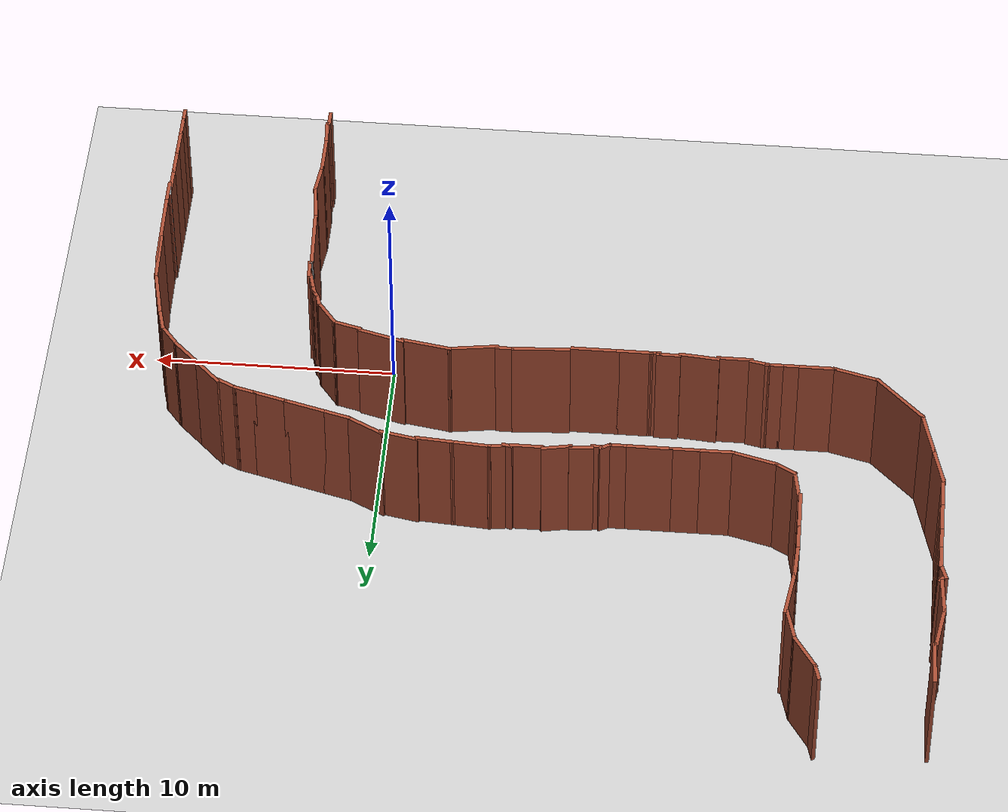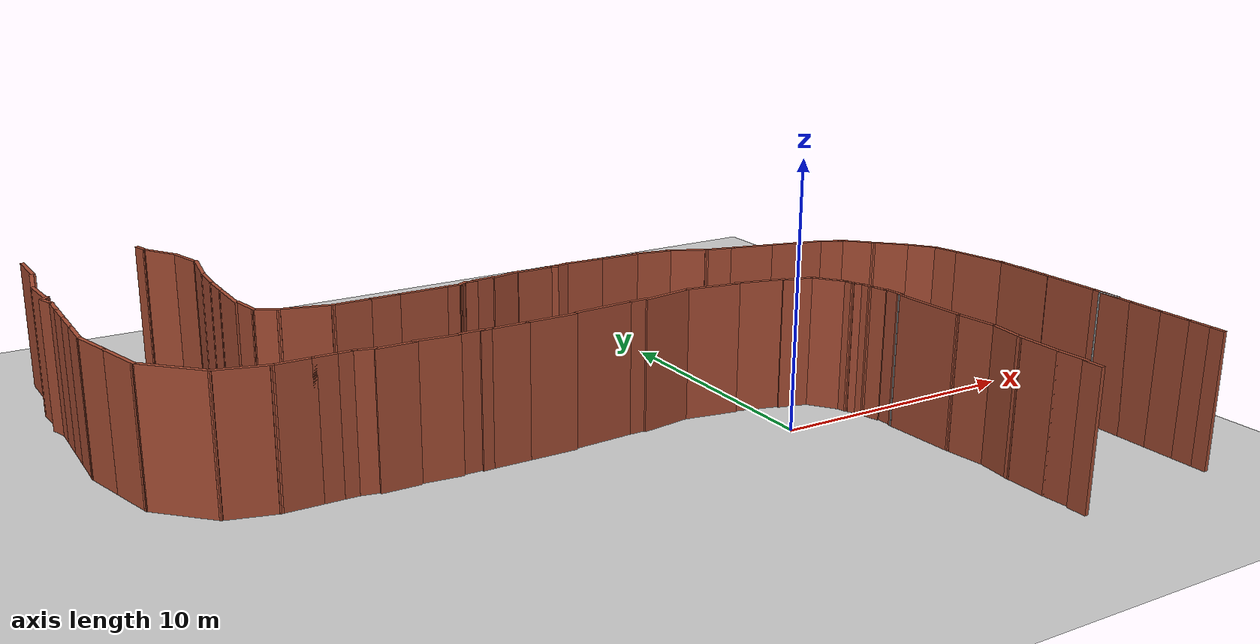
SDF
<sdf version="1.6">
 <world name="default">
  <model name="ground_plane">
   <static>1</static>
   <link name="link">
    <collision name="collision">
     <geometry><plane><normal>0 0 1</normal><size>100 100</size></plane></geometry>
     <surface><friction><ode><mu>100</mu><mu2>50</mu2></ode></friction></surface>
    </collision>
    <visual name="visual">
     <cast_shadows>0</cast_shadows>
     <geometry><plane><normal>0 0 1</normal><size>100 100</size></plane></geometry>
     <material>
      <script><uri>file://media/materials/scripts/gazebo.material</uri><name>Gazebo/Grey</name></script>
     </material>
    </visual>
   </link>
  </model>
  <model name="testing_world3">
   <pose>-6.53172 4.3084 0 0 -0 0</pose>
   <link name="Wall_10">
    <collision name="Wall_10_Collision">
     <geometry><box><size>2.30782 0.15 5</size></box></geometry>
     <pose>0 0 2.5 0 -0 0</pose>
    </collision>
    <visual name="Wall_10_Visual">
     <pose>0 0 2.5 0 -0 0</pose>
     <geometry><box><size>2.30782 0.15 5</size></box></geometry>
     <material>
      <script><uri>file://media/materials/scripts/gazebo.material</uri><name>Gazebo/Bricks</name></script>
      <ambient>1 1 1 1</ambient>
     </material>
     <meta><layer>0</layer></meta>
    </visual>
    <pose>16.3496 -5.59332 0 0 -0 1.60372</pose>
   </link>
   <link name="Wall_100">
    <collision name="Wall_100_Collision">
     <geometry><box><size>0.5 0.15 5</size></box></geometry>
     <pose>0 0 2.5 0 -0 0</pose>
    </collision>
    <visual name="Wall_100_Visual">
     <pose>0 0 2.5 0 -0 0</pose>
     <geometry><box><size>0.5 0.15 5</size></box></geometry>
     <material>
      <script><uri>file://media/materials/scripts/gazebo.material</uri><name>Gazebo/Bricks</name></script>
      <ambient>1 1 1 1</ambient>
     </material>
     <meta><layer>0</layer></meta>
    </visual>
    <pose>9.6284 -3.94444 0 0 -0 -1.0472</pose>
   </link>
   <link name="Wall_101">
    <collision name="Wall_101_Collision">
     <geometry><box><size>0.5 0.15 5</size></box></geometry>
     <pose>0 0 2.5 0 -0 0</pose>
    </collision>
    <visual name="Wall_101_Visual">
     <pose>0 0 2.5 0 -0 0</pose>
     <geometry><box><size>0.5 0.15 5</size></box></geometry>
     <material>
      <script><uri>file://media/materials/scripts/gazebo.material</uri><name>Gazebo/Bricks</name></script>
      <ambient>1 1 1 1</ambient>
     </material>
     <meta><layer>0</layer></meta>
    </visual>
    <pose>9.76119 -4.26503 0 0 -0 -1.309</pose>
   </link>
   <link name="Wall_102">
    <collision name="Wall_102_Collision">
     <geometry><box><size>0.761275 0.15 5</size></box></geometry>
     <pose>0 0 2.5 0 -0 0</pose>
    </collision>
    <visual name="Wall_102_Visual">
     <pose>0 0 2.5 0 -0 0</pose>
     <geometry><box><size>0.761275 0.15 5</size></box></geometry>
     <material>
      <script><uri>file://media/materials/scripts/gazebo.material</uri><name>Gazebo/Bricks</name></script>
      <ambient>1 1 1 1</ambient>
     </material>
     <meta><layer>0</layer></meta>
    </visual>
    <pose>9.88573 -4.72926 0 0 -0 -1.30853</pose>
   </link>
   <link name="Wall_103">
    <collision name="Wall_103_Collision">
     <geometry><box><size>0.863527 0.15 5</size></box></geometry>
     <pose>0 0 2.5 0 -0 0</pose>
    </collision>
    <visual name="Wall_103_Visual">
     <pose>0 0 2.5 0 -0 0</pose>
     <geometry><box><size>0.863527 0.15 5</size></box></geometry>
     <material>
      <script><uri>file://media/materials/scripts/gazebo.material</uri><name>Gazebo/Bricks</name></script>
      <ambient>1 1 1 1</ambient>
     </material>
     <meta><layer>0</layer></meta>
    </visual>
    <pose>10.0573 -5.38055 0 0 -0 -1.5102</pose>
   </link>
   <link name="Wall_104">
    <collision name="Wall_104_Collision">
     <geometry><box><size>0.15 0.15 5</size></box></geometry>
     <pose>0 0 2.5 0 -0 0</pose>
    </collision>
    <visual name="Wall_104_Visual">
     <pose>0 0 2.5 0 -0 0</pose>
     <geometry><box><size>0.15 0.15 5</size></box></geometry>
     <material>
      <script><uri>file://media/materials/scripts/gazebo.material</uri><name>Gazebo/Grey</name></script>
      <ambient>1 1 1 1</ambient>
     </material>
     <meta><layer>0</layer></meta>
    </visual>
    <pose>10.0082 -5.73666 0 0 -0 0</pose>
   </link>
   <link name="Wall_11">
    <collision name="Wall_11_Collision">
     <geometry><box><size>2.18167 0.15 5</size></box></geometry>
     <pose>0 0 2.5 0 -0 0</pose>
    </collision>
    <visual name="Wall_11_Visual">
     <pose>0 0 2.5 0 -0 0</pose>
     <geometry><box><size>2.18167 0.15 5</size></box></geometry>
     <material>
      <script><uri>file://media/materials/scripts/gazebo.material</uri><name>Gazebo/Bricks</name></script>
      <ambient>1 1 1 1</ambient>
     </material>
     <meta><layer>0</layer></meta>
    </visual>
    <pose>16.1021 -3.52182 0 0 -0 1.78103</pose>
   </link>
   <link name="Wall_12">
    <collision name="Wall_12_Collision">
     <geometry><box><size>1.11413 0.15 5</size></box></geometry>
     <pose>0 0 2.5 0 -0 0</pose>
    </collision>
    <visual name="Wall_12_Visual">
     <pose>0 0 2.5 0 -0 0</pose>
     <geometry><box><size>1.11413 0.15 5</size></box></geometry>
     <material>
      <script><uri>file://media/materials/scripts/gazebo.material</uri><name>Gazebo/Bricks</name></script>
      <ambient>1 1 1 1</ambient>
     </material>
     <meta><layer>0</layer></meta>
    </visual>
    <pose>15.7686 -2.06182 0 0 -0 1.82559</pose>
   </link>
   <link name="Wall_13">
    <collision name="Wall_13_Collision">
     <geometry><box><size>1.22947 0.15 5</size></box></geometry>
     <pose>0 0 2.5 0 -0 0</pose>
    </collision>
    <visual name="Wall_13_Visual">
     <pose>0 0 2.5 0 -0 0</pose>
     <geometry><box><size>1.22947 0.15 5</size></box></geometry>
     <material>
      <script><uri>file://media/materials/scripts/gazebo.material</uri><name>Gazebo/Bricks</name></script>
      <ambient>1 1 1 1</ambient>
     </material>
     <meta><layer>0</layer></meta>
    </visual>
    <pose>15.3141 -1.17032 0 0 -0 2.23541</pose>
   </link>
   <link name="Wall_14">
    <collision name="Wall_14_Collision">
     <geometry><box><size>1.50994 0.15 5</size></box></geometry>
     <pose>0 0 2.5 0 -0 0</pose>
    </collision>
    <visual name="Wall_14_Visual">
     <pose>0 0 2.5 0 -0 0</pose>
     <geometry><box><size>1.50994 0.15 5</size></box></geometry>
     <material>
      <script><uri>file://media/materials/scripts/gazebo.material</uri><name>Gazebo/Bricks</name></script>
      <ambient>1 1 1 1</ambient>
     </material>
     <meta><layer>0</layer></meta>
    </visual>
    <pose>14.4961 -0.268745 0 0 -0 2.36497</pose>
   </link>
   <link name="Wall_15">
    <collision name="Wall_15_Collision">
     <geometry><box><size>1.5 0.15 5</size></box></geometry>
     <pose>0 0 2.5 0 -0 0</pose>
    </collision>
    <visual name="Wall_15_Visual">
     <pose>0 0 2.5 0 -0 0</pose>
     <geometry><box><size>1.5 0.15 5</size></box></geometry>
     <material>
      <script><uri>file://media/materials/scripts/gazebo.material</uri><name>Gazebo/Bricks</name></script>
      <ambient>1 1 1 1</ambient>
     </material>
     <meta><layer>0</layer></meta>
    </visual>
    <pose>13.5338 0.685124 0 0 -0 2.35619</pose>
   </link>
   <link name="Wall_16">
    <collision name="Wall_16_Collision">
     <geometry><box><size>0.982832 0.15 5</size></box></geometry>
     <pose>0 0 2.5 0 -0 0</pose>
    </collision>
    <visual name="Wall_16_Visual">
     <pose>0 0 2.5 0 -0 0</pose>
     <geometry><box><size>0.982832 0.15 5</size></box></geometry>
     <material>
      <script><uri>file://media/materials/scripts/gazebo.material</uri><name>Gazebo/Bricks</name></script>
      <ambient>1 1 1 1</ambient>
     </material>
     <meta><layer>0</layer></meta>
    </visual>
    <pose>12.6814 1.27242 0 0 -0 2.69258</pose>
   </link>
   <link name="Wall_17">
    <collision name="Wall_17_Collision">
     <geometry><box><size>1 0.15 5</size></box></geometry>
     <pose>0 0 2.5 0 -0 0</pose>
    </collision>
    <visual name="Wall_17_Visual">
     <pose>0 0 2.5 0 -0 0</pose>
     <geometry><box><size>1 0.15 5</size></box></geometry>
     <material>
      <script><uri>file://media/materials/scripts/gazebo.material</uri><name>Gazebo/Bricks</name></script>
      <ambient>1 1 1 1</ambient>
     </material>
     <meta><layer>0</layer></meta>
    </visual>
    <pose>11.8957 1.56317 0 0 -0 2.87979</pose>
   </link>
   <link name="Wall_18">
    <collision name="Wall_18_Collision">
     <geometry><box><size>1.5 0.15 5</size></box></geometry>
     <pose>0 0 2.5 0 -0 0</pose>
    </collision>
    <visual name="Wall_18_Visual">
     <pose>0 0 2.5 0 -0 0</pose>
     <geometry><box><size>1.5 0.15 5</size></box></geometry>
     <material>
      <script><uri>file://media/materials/scripts/gazebo.material</uri><name>Gazebo/Bricks</name></script>
      <ambient>1 1 1 1</ambient>
     </material>
     <meta><layer>0</layer></meta>
    </visual>
    <pose>10.8332 1.84787 0 0 -0 2.87979</pose>
   </link>
   <link name="Wall_19">
    <collision name="Wall_19_Collision">
     <geometry><box><size>1.75 0.15 5</size></box></geometry>
     <pose>0 0 2.5 0 -0 0</pose>
    </collision>
    <visual name="Wall_19_Visual">
     <pose>0 0 2.5 0 -0 0</pose>
     <geometry><box><size>1.75 0.15 5</size></box></geometry>
     <material>
      <script><uri>file://media/materials/scripts/gazebo.material</uri><name>Gazebo/Bricks</name></script>
      <ambient>1 1 1 1</ambient>
     </material>
     <meta><layer>0</layer></meta>
    </visual>
    <pose>9.40845 2.22963 0 0 -0 2.87979</pose>
   </link>
   <link name="Wall_20">
    <collision name="Wall_20_Collision">
     <geometry><box><size>1.25 0.15 5</size></box></geometry>
     <pose>0 0 2.5 0 -0 0</pose>
    </collision>
    <visual name="Wall_20_Visual">
     <pose>0 0 2.5 0 -0 0</pose>
     <geometry><box><size>1.25 0.15 5</size></box></geometry>
     <material>
      <script><uri>file://media/materials/scripts/gazebo.material</uri><name>Gazebo/Bricks</name></script>
      <ambient>1 1 1 1</ambient>
     </material>
     <meta><layer>0</layer></meta>
    </visual>
    <pose>8.10445 2.57904 0 0 -0 2.87979</pose>
   </link>
   <link name="Wall_21">
    <collision name="Wall_21_Collision">
     <geometry><box><size>1.69416 0.15 5</size></box></geometry>
     <pose>0 0 2.5 0 -0 0</pose>
    </collision>
    <visual name="Wall_21_Visual">
     <pose>0 0 2.5 0 -0 0</pose>
     <geometry><box><size>1.69416 0.15 5</size></box></geometry>
     <material>
      <script><uri>file://media/materials/scripts/gazebo.material</uri><name>Gazebo/Bricks</name></script>
      <ambient>1 1 1 1</ambient>
     </material>
     <meta><layer>0</layer></meta>
    </visual>
    <pose>6.88581 3.07298 0 0 -0 2.66879</pose>
   </link>
   <link name="Wall_22">
    <collision name="Wall_22_Collision">
     <geometry><box><size>1.59867 0.15 5</size></box></geometry>
     <pose>0 0 2.5 0 -0 0</pose>
    </collision>
    <visual name="Wall_22_Visual">
     <pose>0 0 2.5 0 -0 0</pose>
     <geometry><box><size>1.59867 0.15 5</size></box></geometry>
     <material>
      <script><uri>file://media/materials/scripts/gazebo.material</uri><name>Gazebo/Bricks</name></script>
      <ambient>1 1 1 1</ambient>
     </material>
     <meta><layer>0</layer></meta>
    </visual>
    <pose>5.48805 3.49534 0 0 -0 2.94496</pose>
   </link>
   <link name="Wall_23">
    <collision name="Wall_23_Collision">
     <geometry><box><size>1.61128 0.15 5</size></box></geometry>
     <pose>0 0 2.5 0 -0 0</pose>
    </collision>
    <visual name="Wall_23_Visual">
     <pose>0 0 2.5 0 -0 0</pose>
     <geometry><box><size>1.61128 0.15 5</size></box></geometry>
     <material>
      <script><uri>file://media/materials/scripts/gazebo.material</uri><name>Gazebo/Bricks</name></script>
      <ambient>1 1 1 1</ambient>
     </material>
     <meta><layer>0</layer></meta>
    </visual>
    <pose>4.04895 3.61896 0 0 -0 3.06917</pose>
   </link>
   <link name="Wall_24">
    <collision name="Wall_24_Collision">
     <geometry><box><size>1.64283 0.15 5</size></box></geometry>
     <pose>0 0 2.5 0 -0 0</pose>
    </collision>
    <visual name="Wall_24_Visual">
     <pose>0 0 2.5 0 -0 0</pose>
     <geometry><box><size>1.64283 0.15 5</size></box></geometry>
     <material>
      <script><uri>file://media/materials/scripts/gazebo.material</uri><name>Gazebo/Bricks</name></script>
      <ambient>1 1 1 1</ambient>
     </material>
     <meta><layer>0</layer></meta>
    </visual>
    <pose>2.5757 3.72496 0 0 -0 3.07036</pose>
   </link>
   <link name="Wall_25">
    <collision name="Wall_25_Collision">
     <geometry><box><size>0.720151 0.15 5</size></box></geometry>
     <pose>0 0 2.5 0 -0 0</pose>
    </collision>
    <visual name="Wall_25_Visual">
     <pose>0 0 2.5 0 -0 0</pose>
     <geometry><box><size>0.720151 0.15 5</size></box></geometry>
     <material>
      <script><uri>file://media/materials/scripts/gazebo.material</uri><name>Gazebo/Bricks</name></script>
      <ambient>1 1 1 1</ambient>
     </material>
     <meta><layer>0</layer></meta>
    </visual>
    <pose>1.54829 3.74285 0 0 -0 -3.01766</pose>
   </link>
   <link name="Wall_26">
    <collision name="Wall_26_Collision">
     <geometry><box><size>0.458341 0.15 5</size></box></geometry>
     <pose>0 0 2.5 0 -0 0</pose>
    </collision>
    <visual name="Wall_26_Visual">
     <pose>0 0 2.5 0 -0 0</pose>
     <geometry><box><size>0.458341 0.15 5</size></box></geometry>
     <material>
      <script><uri>file://media/materials/scripts/gazebo.material</uri><name>Gazebo/Bricks</name></script>
      <ambient>1 1 1 1</ambient>
     </material>
     <meta><layer>0</layer></meta>
    </visual>
    <pose>1.11714 3.67912 0 0 -0 2.86388</pose>
   </link>
   <link name="Wall_27">
    <collision name="Wall_27_Collision">
     <geometry><box><size>1.42924 0.15 5</size></box></geometry>
     <pose>0 0 2.5 0 -0 0</pose>
    </collision>
    <visual name="Wall_27_Visual">
     <pose>0 0 2.5 0 -0 0</pose>
     <geometry><box><size>1.42924 0.15 5</size></box></geometry>
     <material>
      <script><uri>file://media/materials/scripts/gazebo.material</uri><name>Gazebo/Bricks</name></script>
      <ambient>1 1 1 1</ambient>
     </material>
     <meta><layer>0</layer></meta>
    </visual>
    <pose>0.329252 3.65063 0 0 -0 3.14159</pose>
   </link>
   <link name="Wall_28">
    <collision name="Wall_28_Collision">
     <geometry><box><size>1.27029 0.15 5</size></box></geometry>
     <pose>0 0 2.5 0 -0 0</pose>
    </collision>
    <visual name="Wall_28_Visual">
     <pose>0 0 2.5 0 -0 0</pose>
     <geometry><box><size>1.27029 0.15 5</size></box></geometry>
     <material>
      <script><uri>file://media/materials/scripts/gazebo.material</uri><name>Gazebo/Bricks</name></script>
      <ambient>1 1 1 1</ambient>
     </material>
     <meta><layer>0</layer></meta>
    </visual>
    <pose>-0.860369 3.61525 0 0 -0 -2.95096</pose>
   </link>
   <link name="Wall_29">
    <collision name="Wall_29_Collision">
     <geometry><box><size>1.00294 0.15 5</size></box></geometry>
     <pose>0 0 2.5 0 -0 0</pose>
    </collision>
    <visual name="Wall_29_Visual">
     <pose>0 0 2.5 0 -0 0</pose>
     <geometry><box><size>1.00294 0.15 5</size></box></geometry>
     <material>
      <script><uri>file://media/materials/scripts/gazebo.material</uri><name>Gazebo/Bricks</name></script>
      <ambient>1 1 1 1</ambient>
     </material>
     <meta><layer>0</layer></meta>
    </visual>
    <pose>-1.83537 3.54449 0 0 -0 -3.05854</pose>
   </link>
   <link name="Wall_3">
    <collision name="Wall_3_Collision">
     <geometry><box><size>1.5 0.15 5</size></box></geometry>
     <pose>0 0 2.5 0 -0 0</pose>
    </collision>
    <visual name="Wall_3_Visual">
     <pose>0 0 2.5 0 -0 0</pose>
     <geometry><box><size>1.5 0.15 5</size></box></geometry>
     <material>
      <script><uri>file://media/materials/scripts/gazebo.material</uri><name>Gazebo/Bricks</name></script>
      <ambient>1 1 1 1</ambient>
     </material>
     <meta><layer>0</layer></meta>
    </visual>
    <pose>16.3851 -9.88032 0 0 -0 1.5708</pose>
   </link>
   <link name="Wall_30">
    <collision name="Wall_30_Collision">
     <geometry><box><size>0.5 0.15 5</size></box></geometry>
     <pose>0 0 2.5 0 -0 0</pose>
    </collision>
    <visual name="Wall_30_Visual">
     <pose>0 0 2.5 0 -0 0</pose>
     <geometry><box><size>0.5 0.15 5</size></box></geometry>
     <material>
      <script><uri>file://media/materials/scripts/gazebo.material</uri><name>Gazebo/Bricks</name></script>
      <ambient>1 1 1 1</ambient>
     </material>
     <meta><layer>0</layer></meta>
    </visual>
    <pose>-2.43537 3.43836 0 0 -0 3.14159</pose>
   </link>
   <link name="Wall_31">
    <collision name="Wall_31_Collision">
     <geometry><box><size>0.539009 0.15 5</size></box></geometry>
     <pose>0 0 2.5 0 -0 0</pose>
    </collision>
    <visual name="Wall_31_Visual">
     <pose>0 0 2.5 0 -0 0</pose>
     <geometry><box><size>0.539009 0.15 5</size></box></geometry>
     <material>
      <script><uri>file://media/materials/scripts/gazebo.material</uri><name>Gazebo/Bricks</name></script>
      <ambient>1 1 1 1</ambient>
     </material>
     <meta><layer>0</layer></meta>
    </visual>
    <pose>-2.77941 3.41289 0 0 -0 -2.62411</pose>
   </link>
   <link name="Wall_32">
    <collision name="Wall_32_Collision">
     <geometry><box><size>0.75 0.15 5</size></box></geometry>
     <pose>0 0 2.5 0 -0 0</pose>
    </collision>
    <visual name="Wall_32_Visual">
     <pose>0 0 2.5 0 -0 0</pose>
     <geometry><box><size>0.75 0.15 5</size></box></geometry>
     <material>
      <script><uri>file://media/materials/scripts/gazebo.material</uri><name>Gazebo/Bricks</name></script>
      <ambient>1 1 1 1</ambient>
     </material>
     <meta><layer>0</layer></meta>
    </visual>
    <pose>-3.24844 3.31667 0 0 -0 3.14159</pose>
   </link>
   <link name="Wall_34">
    <collision name="Wall_34_Collision">
     <geometry><box><size>2 0.15 5</size></box></geometry>
     <pose>0 0 2.5 0 -0 0</pose>
    </collision>
    <visual name="Wall_34_Visual">
     <pose>0 0 2.5 0 -0 0</pose>
     <geometry><box><size>2 0.15 5</size></box></geometry>
     <material>
      <script><uri>file://media/materials/scripts/gazebo.material</uri><name>Gazebo/Bricks</name></script>
      <ambient>1 1 1 1</ambient>
     </material>
     <meta><layer>0</layer></meta>
    </visual>
    <pose>-4.47344 3.31667 0 0 -0 3.14159</pose>
   </link>
   <link name="Wall_35">
    <collision name="Wall_35_Collision">
     <geometry><box><size>1.25 0.15 5</size></box></geometry>
     <pose>0 0 2.5 0 -0 0</pose>
    </collision>
    <visual name="Wall_35_Visual">
     <pose>0 0 2.5 0 -0 0</pose>
     <geometry><box><size>1.25 0.15 5</size></box></geometry>
     <material>
      <script><uri>file://media/materials/scripts/gazebo.material</uri><name>Gazebo/Bricks</name></script>
      <ambient>1 1 1 1</ambient>
     </material>
     <meta><layer>0</layer></meta>
    </visual>
    <pose>-5.94844 3.31667 0 0 -0 3.14159</pose>
   </link>
   <link name="Wall_36">
    <collision name="Wall_36_Collision">
     <geometry><box><size>1.5 0.15 5</size></box></geometry>
     <pose>0 0 2.5 0 -0 0</pose>
    </collision>
    <visual name="Wall_36_Visual">
     <pose>0 0 2.5 0 -0 0</pose>
     <geometry><box><size>1.5 0.15 5</size></box></geometry>
     <material>
      <script><uri>file://media/materials/scripts/gazebo.material</uri><name>Gazebo/Bricks</name></script>
      <ambient>1 1 1 1</ambient>
     </material>
     <meta><layer>0</layer></meta>
    </visual>
    <pose>-7.17344 3.31667 0 0 -0 3.14159</pose>
   </link>
   <link name="Wall_37">
    <collision name="Wall_37_Collision">
     <geometry><box><size>2 0.15 5</size></box></geometry>
     <pose>0 0 2.5 0 -0 0</pose>
    </collision>
    <visual name="Wall_37_Visual">
     <pose>0 0 2.5 0 -0 0</pose>
     <geometry><box><size>2 0.15 5</size></box></geometry>
     <material>
      <script><uri>file://media/materials/scripts/gazebo.material</uri><name>Gazebo/Bricks</name></script>
      <ambient>1 1 1 1</ambient>
     </material>
     <meta><layer>0</layer></meta>
    </visual>
    <pose>-8.74193 3.55608 0 0 -0 2.87979</pose>
   </link>
   <link name="Wall_38">
    <collision name="Wall_38_Collision">
     <geometry><box><size>1 0.15 5</size></box></geometry>
     <pose>0 0 2.5 0 -0 0</pose>
    </collision>
    <visual name="Wall_38_Visual">
     <pose>0 0 2.5 0 -0 0</pose>
     <geometry><box><size>1 0.15 5</size></box></geometry>
     <material>
      <script><uri>file://media/materials/scripts/gazebo.material</uri><name>Gazebo/Bricks</name></script>
      <ambient>1 1 1 1</ambient>
     </material>
     <meta><layer>0</layer></meta>
    </visual>
    <pose>-10.0035 4.00799 0 0 -0 2.61799</pose>
   </link>
   <link name="Wall_39">
    <collision name="Wall_39_Collision">
     <geometry><box><size>1.2616 0.15 5</size></box></geometry>
     <pose>0 0 2.5 0 -0 0</pose>
    </collision>
    <visual name="Wall_39_Visual">
     <pose>0 0 2.5 0 -0 0</pose>
     <geometry><box><size>1.2616 0.15 5</size></box></geometry>
     <material>
      <script><uri>file://media/materials/scripts/gazebo.material</uri><name>Gazebo/Bricks</name></script>
      <ambient>1 1 1 1</ambient>
     </material>
     <meta><layer>0</layer></meta>
    </visual>
    <pose>-10.4696 4.76756 0 0 -0 1.74824</pose>
   </link>
   <link name="Wall_4">
    <collision name="Wall_4_Collision">
     <geometry><box><size>0.784982 0.15 5</size></box></geometry>
     <pose>0 0 2.5 0 -0 0</pose>
    </collision>
    <visual name="Wall_4_Visual">
     <pose>0 0 2.5 0 -0 0</pose>
     <geometry><box><size>0.784982 0.15 5</size></box></geometry>
     <material>
      <script><uri>file://media/materials/scripts/gazebo.material</uri><name>Gazebo/Grey</name></script>
      <ambient>1 1 1 1</ambient>
     </material>
     <meta><layer>0</layer></meta>
    </visual>
    <pose>16.4206 -9.52082 0 0 -0 -1.45875</pose>
   </link>
   <link name="Wall_40">
    <collision name="Wall_40_Collision">
     <geometry><box><size>1.84697 0.15 5</size></box></geometry>
     <pose>0 0 2.5 0 -0 0</pose>
    </collision>
    <visual name="Wall_40_Visual">
     <pose>0 0 2.5 0 -0 0</pose>
     <geometry><box><size>1.84697 0.15 5</size></box></geometry>
     <material>
      <script><uri>file://media/materials/scripts/gazebo.material</uri><name>Gazebo/Bricks</name></script>
      <ambient>1 1 1 1</ambient>
     </material>
     <meta><layer>0</layer></meta>
    </visual>
    <pose>-10.6452 6.16309 0 0 -0 1.57866</pose>
   </link>
   <link name="Wall_41">
    <collision name="Wall_41_Collision">
     <geometry><box><size>1.25 0.15 5</size></box></geometry>
     <pose>0 0 2.5 0 -0 0</pose>
    </collision>
    <visual name="Wall_41_Visual">
     <pose>0 0 2.5 0 -0 0</pose>
     <geometry><box><size>1.25 0.15 5</size></box></geometry>
     <material>
      <script><uri>file://media/materials/scripts/gazebo.material</uri><name>Gazebo/Bricks</name></script>
      <ambient>1 1 1 1</ambient>
     </material>
     <meta><layer>0</layer></meta>
    </visual>
    <pose>-10.6518 7.56155 0 0 -0 1.5708</pose>
   </link>
   <link name="Wall_42">
    <collision name="Wall_42_Collision">
     <geometry><box><size>1.45529 0.15 5</size></box></geometry>
     <pose>0 0 2.5 0 -0 0</pose>
    </collision>
    <visual name="Wall_42_Visual">
     <pose>0 0 2.5 0 -0 0</pose>
     <geometry><box><size>1.45529 0.15 5</size></box></geometry>
     <material>
      <script><uri>file://media/materials/scripts/gazebo.material</uri><name>Gazebo/Bricks</name></script>
      <ambient>1 1 1 1</ambient>
     </material>
     <meta><layer>0</layer></meta>
    </visual>
    <pose>-10.6167 8.76324 0 0 -0 1.51689</pose>
   </link>
   <link name="Wall_43">
    <collision name="Wall_43_Collision">
     <geometry><box><size>2.0915 0.15 5</size></box></geometry>
     <pose>0 0 2.5 0 -0 0</pose>
    </collision>
    <visual name="Wall_43_Visual">
     <pose>0 0 2.5 0 -0 0</pose>
     <geometry><box><size>2.0915 0.15 5</size></box></geometry>
     <material>
      <script><uri>file://media/materials/scripts/gazebo.material</uri><name>Gazebo/Bricks</name></script>
      <ambient>1 1 1 1</ambient>
     </material>
     <meta><layer>0</layer></meta>
    </visual>
    <pose>-10.44 10.3753 0 0 -0 1.4245</pose>
   </link>
   <link name="Wall_44">
    <collision name="Wall_44_Collision">
     <geometry><box><size>1.5 0.15 5</size></box></geometry>
     <pose>0 0 2.5 0 -0 0</pose>
    </collision>
    <visual name="Wall_44_Visual">
     <pose>0 0 2.5 0 -0 0</pose>
     <geometry><box><size>1.5 0.15 5</size></box></geometry>
     <material>
      <script><uri>file://media/materials/scripts/gazebo.material</uri><name>Gazebo/Bricks</name></script>
      <ambient>1 1 1 1</ambient>
     </material>
     <meta><layer>0</layer></meta>
    </visual>
    <pose>-10.544 11.9877 0 0 -0 1.8326</pose>
   </link>
   <link name="Wall_45">
    <collision name="Wall_45_Collision">
     <geometry><box><size>1.69608 0.15 5</size></box></geometry>
     <pose>0 0 2.5 0 -0 0</pose>
    </collision>
    <visual name="Wall_45_Visual">
     <pose>0 0 2.5 0 -0 0</pose>
     <geometry><box><size>1.69608 0.15 5</size></box></geometry>
     <material>
      <script><uri>file://media/materials/scripts/gazebo.material</uri><name>Gazebo/Bricks</name></script>
      <ambient>1 1 1 1</ambient>
     </material>
     <meta><layer>0</layer></meta>
    </visual>
    <pose>-11.1371 13.2897 0 0 -0 2.14284</pose>
   </link>
   <link name="Wall_46">
    <collision name="Wall_46_Collision">
     <geometry><box><size>0.75 0.15 5</size></box></geometry>
     <pose>0 0 2.5 0 -0 0</pose>
    </collision>
    <visual name="Wall_46_Visual">
     <pose>0 0 2.5 0 -0 0</pose>
     <geometry><box><size>0.75 0.15 5</size></box></geometry>
     <material>
      <script><uri>file://media/materials/scripts/gazebo.material</uri><name>Gazebo/Bricks</name></script>
      <ambient>1 1 1 1</ambient>
     </material>
     <meta><layer>0</layer></meta>
    </visual>
    <pose>-11.6333 14.2294 0 0 -0 1.8326</pose>
   </link>
   <link name="Wall_48">
    <collision name="Wall_48_Collision">
     <geometry><box><size>1.44172 0.15 5</size></box></geometry>
     <pose>0 0 2.5 0 -0 0</pose>
    </collision>
    <visual name="Wall_48_Visual">
     <pose>0 0 2.5 0 -0 0</pose>
     <geometry><box><size>1.44172 0.15 5</size></box></geometry>
     <material>
      <script><uri>file://media/materials/scripts/gazebo.material</uri><name>Gazebo/Bricks</name></script>
      <ambient>1 1 1 1</ambient>
     </material>
     <meta><layer>0</layer></meta>
    </visual>
    <pose>10.2582 -10.6601 0 0 -0 1.46102</pose>
   </link>
   <link name="Wall_49">
    <collision name="Wall_49_Collision">
     <geometry><box><size>1.59268 0.15 5</size></box></geometry>
     <pose>0 0 2.5 0 -0 0</pose>
    </collision>
    <visual name="Wall_49_Visual">
     <pose>0 0 2.5 0 -0 0</pose>
     <geometry><box><size>1.59268 0.15 5</size></box></geometry>
     <material>
      <script><uri>file://media/materials/scripts/gazebo.material</uri><name>Gazebo/Bricks</name></script>
      <ambient>1 1 1 1</ambient>
     </material>
     <meta><layer>0</layer></meta>
    </visual>
    <pose>10.2393 -9.23165 0 0 -0 1.6954</pose>
   </link>
   <link name="Wall_5">
    <collision name="Wall_5_Collision">
     <geometry><box><size>1.17936 0.15 5</size></box></geometry>
     <pose>0 0 2.5 0 -0 0</pose>
    </collision>
    <visual name="Wall_5_Visual">
     <pose>0 0 2.5 0 -0 0</pose>
     <geometry><box><size>1.17936 0.15 5</size></box></geometry>
     <material>
      <script><uri>file://media/materials/scripts/gazebo.material</uri><name>Gazebo/Bricks</name></script>
      <ambient>1 1 1 1</ambient>
     </material>
     <meta><layer>0</layer></meta>
    </visual>
    <pose>16.4561 -9.32182 0 0 -0 1.5708</pose>
   </link>
   <link name="Wall_50">
    <collision name="Wall_50_Collision">
     <geometry><box><size>2.93284 0.15 5</size></box></geometry>
     <pose>0 0 2.5 0 -0 0</pose>
    </collision>
    <visual name="Wall_50_Visual">
     <pose>0 0 2.5 0 -0 0</pose>
     <geometry><box><size>2.93284 0.15 5</size></box></geometry>
     <material>
      <script><uri>file://media/materials/scripts/gazebo.material</uri><name>Gazebo/Bricks</name></script>
      <ambient>1 1 1 1</ambient>
     </material>
     <meta><layer>0</layer></meta>
    </visual>
    <pose>10.0789 -7.12628 0 0 -0 1.62167</pose>
   </link>
   <link name="Wall_54">
    <collision name="Wall_54_Collision">
     <geometry><box><size>1.39835 0.15 5</size></box></geometry>
     <pose>0 0 2.5 0 -0 0</pose>
    </collision>
    <visual name="Wall_54_Visual">
     <pose>0 0 2.5 0 -0 0</pose>
     <geometry><box><size>1.39835 0.15 5</size></box></geometry>
     <material>
      <script><uri>file://media/materials/scripts/gazebo.material</uri><name>Gazebo/Bricks</name></script>
      <ambient>1 1 1 1</ambient>
     </material>
     <meta><layer>0</layer></meta>
    </visual>
    <pose>9.07353 -2.95719 0 0 -0 2.21887</pose>
   </link>
   <link name="Wall_55">
    <collision name="Wall_55_Collision">
     <geometry><box><size>1.25 0.15 5</size></box></geometry>
     <pose>0 0 2.5 0 -0 0</pose>
    </collision>
    <visual name="Wall_55_Visual">
     <pose>0 0 2.5 0 -0 0</pose>
     <geometry><box><size>1.25 0.15 5</size></box></geometry>
     <material>
      <script><uri>file://media/materials/scripts/gazebo.material</uri><name>Gazebo/Bricks</name></script>
      <ambient>1 1 1 1</ambient>
     </material>
     <meta><layer>0</layer></meta>
    </visual>
    <pose>8.16548 -2.31722 0 0 -0 2.87979</pose>
   </link>
   <link name="Wall_56">
    <collision name="Wall_56_Collision">
     <geometry><box><size>2 0.15 5</size></box></geometry>
     <pose>0 0 2.5 0 -0 0</pose>
    </collision>
    <visual name="Wall_56_Visual">
     <pose>0 0 2.5 0 -0 0</pose>
     <geometry><box><size>2 0.15 5</size></box></geometry>
     <material>
      <script><uri>file://media/materials/scripts/gazebo.material</uri><name>Gazebo/Bricks</name></script>
      <ambient>1 1 1 1</ambient>
     </material>
     <meta><layer>0</layer></meta>
    </visual>
    <pose>6.74074 -1.8647 0 0 -0 2.87979</pose>
   </link>
   <link name="Wall_57">
    <collision name="Wall_57_Collision">
     <geometry><box><size>2.13486 0.15 5</size></box></geometry>
     <pose>0 0 2.5 0 -0 0</pose>
    </collision>
    <visual name="Wall_57_Visual">
     <pose>0 0 2.5 0 -0 0</pose>
     <geometry><box><size>2.13486 0.15 5</size></box></geometry>
     <material>
      <script><uri>file://media/materials/scripts/gazebo.material</uri><name>Gazebo/Bricks</name></script>
      <ambient>1 1 1 1</ambient>
     </material>
     <meta><layer>0</layer></meta>
    </visual>
    <pose>4.86861 -1.53123 0 0 -0 2.97474</pose>
   </link>
   <link name="Wall_58">
    <collision name="Wall_58_Collision">
     <geometry><box><size>2.0915 0.15 5</size></box></geometry>
     <pose>0 0 2.5 0 -0 0</pose>
    </collision>
    <visual name="Wall_58_Visual">
     <pose>0 0 2.5 0 -0 0</pose>
     <geometry><box><size>2.0915 0.15 5</size></box></geometry>
     <material>
      <script><uri>file://media/materials/scripts/gazebo.material</uri><name>Gazebo/Bricks</name></script>
      <ambient>1 1 1 1</ambient>
     </material>
     <meta><layer>0</layer></meta>
    </visual>
    <pose>2.92958 -1.50791 0 0 -0 -2.99529</pose>
   </link>
   <link name="Wall_59">
    <collision name="Wall_59_Collision">
     <geometry><box><size>0.754701 0.15 5</size></box></geometry>
     <pose>0 0 2.5 0 -0 0</pose>
    </collision>
    <visual name="Wall_59_Visual">
     <pose>0 0 2.5 0 -0 0</pose>
     <geometry><box><size>0.754701 0.15 5</size></box></geometry>
     <material>
      <script><uri>file://media/materials/scripts/gazebo.material</uri><name>Gazebo/Bricks</name></script>
      <ambient>1 1 1 1</ambient>
     </material>
     <meta><layer>0</layer></meta>
    </visual>
    <pose>1.66686 -1.57867 0 0 -0 3.14159</pose>
   </link>
   <link name="Wall_6">
    <collision name="Wall_6_Collision">
     <geometry><box><size>3.55269 0.15 5</size></box></geometry>
     <pose>0 0 2.5 0 -0 0</pose>
    </collision>
    <visual name="Wall_6_Visual">
     <pose>0 0 2.5 0 -0 0</pose>
     <geometry><box><size>3.55269 0.15 5</size></box></geometry>
     <material>
      <script><uri>file://media/materials/scripts/gazebo.material</uri><name>Gazebo/Bricks</name></script>
      <ambient>1 1 1 1</ambient>
     </material>
     <meta><layer>0</layer></meta>
    </visual>
    <pose>16.4206 -7.10632 0 0 -0 1.59166</pose>
   </link>
   <link name="Wall_60">
    <collision name="Wall_60_Collision">
     <geometry><box><size>2.38745 0.15 5</size></box></geometry>
     <pose>0 0 2.5 0 -0 0</pose>
    </collision>
    <visual name="Wall_60_Visual">
     <pose>0 0 2.5 0 -0 0</pose>
     <geometry><box><size>2.38745 0.15 5</size></box></geometry>
     <material>
      <script><uri>file://media/materials/scripts/gazebo.material</uri><name>Gazebo/Bricks</name></script>
      <ambient>1 1 1 1</ambient>
     </material>
     <meta><layer>0</layer></meta>
    </visual>
    <pose>0.177127 -1.64724 0 0 -0 -3.08026</pose>
   </link>
   <link name="Wall_64">
    <collision name="Wall_64_Collision">
     <geometry><box><size>1.5 0.15 5</size></box></geometry>
     <pose>0 0 2.5 0 -0 0</pose>
    </collision>
    <visual name="Wall_64_Visual">
     <pose>0 0 2.5 0 -0 0</pose>
     <geometry><box><size>1.5 0.15 5</size></box></geometry>
     <material>
      <script><uri>file://media/materials/scripts/gazebo.material</uri><name>Gazebo/Bricks</name></script>
      <ambient>1 1 1 1</ambient>
     </material>
     <meta><layer>0</layer></meta>
    </visual>
    <pose>-3.60988 -1.80356 0 0 -0 3.14159</pose>
   </link>
   <link name="Wall_65">
    <collision name="Wall_65_Collision">
     <geometry><box><size>0.503404 0.15 5</size></box></geometry>
     <pose>0 0 2.5 0 -0 0</pose>
    </collision>
    <visual name="Wall_65_Visual">
     <pose>0 0 2.5 0 -0 0</pose>
     <geometry><box><size>0.503404 0.15 5</size></box></geometry>
     <material>
      <script><uri>file://media/materials/scripts/gazebo.material</uri><name>Gazebo/Bricks</name></script>
      <ambient>1 1 1 1</ambient>
     </material>
     <meta><layer>0</layer></meta>
    </visual>
    <pose>-4.46139 -1.8118 0 0 -0 -3.09493</pose>
   </link>
   <link name="Wall_66">
    <collision name="Wall_66_Collision">
     <geometry><box><size>1 0.15 5</size></box></geometry>
     <pose>0 0 2.5 0 -0 0</pose>
    </collision>
    <visual name="Wall_66_Visual">
     <pose>0 0 2.5 0 -0 0</pose>
     <geometry><box><size>1 0.15 5</size></box></geometry>
     <material>
      <script><uri>file://media/materials/scripts/gazebo.material</uri><name>Gazebo/Bricks</name></script>
      <ambient>1 1 1 1</ambient>
     </material>
     <meta><layer>0</layer></meta>
    </visual>
    <pose>-4.99214 -1.74929 0 0 -0 3.14159</pose>
   </link>
   <link name="Wall_67">
    <collision name="Wall_67_Collision">
     <geometry><box><size>1.67246 0.15 5</size></box></geometry>
     <pose>0 0 2.5 0 -0 0</pose>
    </collision>
    <visual name="Wall_67_Visual">
     <pose>0 0 2.5 0 -0 0</pose>
     <geometry><box><size>1.67246 0.15 5</size></box></geometry>
     <material>
      <script><uri>file://media/materials/scripts/gazebo.material</uri><name>Gazebo/Bricks</name></script>
      <ambient>1 1 1 1</ambient>
     </material>
     <meta><layer>0</layer></meta>
    </visual>
    <pose>-6.24604 -1.75148 0 0 -0 3.0514</pose>
   </link>
   <link name="Wall_68">
    <collision name="Wall_68_Collision">
     <geometry><box><size>1.5 0.15 5</size></box></geometry>
     <pose>0 0 2.5 0 -0 0</pose>
    </collision>
    <visual name="Wall_68_Visual">
     <pose>0 0 2.5 0 -0 0</pose>
     <geometry><box><size>1.5 0.15 5</size></box></geometry>
     <material>
      <script><uri>file://media/materials/scripts/gazebo.material</uri><name>Gazebo/Bricks</name></script>
      <ambient>1 1 1 1</ambient>
     </material>
     <meta><layer>0</layer></meta>
    </visual>
    <pose>-7.67917 -1.75367 0 0 -0 3.14159</pose>
   </link>
   <link name="Wall_69">
    <collision name="Wall_69_Collision">
     <geometry><box><size>0.872481 0.15 5</size></box></geometry>
     <pose>0 0 2.5 0 -0 0</pose>
    </collision>
    <visual name="Wall_69_Visual">
     <pose>0 0 2.5 0 -0 0</pose>
     <geometry><box><size>0.872481 0.15 5</size></box></geometry>
     <material>
      <script><uri>file://media/materials/scripts/gazebo.material</uri><name>Gazebo/Bricks</name></script>
      <ambient>1 1 1 1</ambient>
     </material>
     <meta><layer>0</layer></meta>
    </visual>
    <pose>-8.70842 -1.61216 0 0 -0 2.94445</pose>
   </link>
   <link name="Wall_71">
    <collision name="Wall_71_Collision">
     <geometry><box><size>0.75 0.15 5</size></box></geometry>
     <pose>0 0 2.5 0 -0 0</pose>
    </collision>
    <visual name="Wall_71_Visual">
     <pose>0 0 2.5 0 -0 0</pose>
     <geometry><box><size>0.75 0.15 5</size></box></geometry>
     <material>
      <script><uri>file://media/materials/scripts/gazebo.material</uri><name>Gazebo/Bricks</name></script>
      <ambient>1 1 1 1</ambient>
     </material>
     <meta><layer>0</layer></meta>
    </visual>
    <pose>-9.2919 -1.5414 0 0 -0 3.14159</pose>
   </link>
   <link name="Wall_72">
    <collision name="Wall_72_Collision">
     <geometry><box><size>0.858486 0.15 5</size></box></geometry>
     <pose>0 0 2.5 0 -0 0</pose>
    </collision>
    <visual name="Wall_72_Visual">
     <pose>0 0 2.5 0 -0 0</pose>
     <geometry><box><size>0.858486 0.15 5</size></box></geometry>
     <material>
      <script><uri>file://media/materials/scripts/gazebo.material</uri><name>Gazebo/Bricks</name></script>
      <ambient>1 1 1 1</ambient>
     </material>
     <meta><layer>0</layer></meta>
    </visual>
    <pose>-10.0169 -1.5414 0 0 -0 3.14159</pose>
   </link>
   <link name="Wall_73">
    <collision name="Wall_73_Collision">
     <geometry><box><size>1.5 0.15 5</size></box></geometry>
     <pose>0 0 2.5 0 -0 0</pose>
    </collision>
    <visual name="Wall_73_Visual">
     <pose>0 0 2.5 0 -0 0</pose>
     <geometry><box><size>1.5 0.15 5</size></box></geometry>
     <material>
      <script><uri>file://media/materials/scripts/gazebo.material</uri><name>Gazebo/Bricks</name></script>
      <ambient>1 1 1 1</ambient>
     </material>
     <meta><layer>0</layer></meta>
    </visual>
    <pose>-11.0461 -1.5414 0 0 -0 3.14159</pose>
   </link>
   <link name="Wall_74">
    <collision name="Wall_74_Collision">
     <geometry><box><size>2 0.15 5</size></box></geometry>
     <pose>0 0 2.5 0 -0 0</pose>
    </collision>
    <visual name="Wall_74_Visual">
     <pose>0 0 2.5 0 -0 0</pose>
     <geometry><box><size>2 0.15 5</size></box></geometry>
     <material>
      <script><uri>file://media/materials/scripts/gazebo.material</uri><name>Gazebo/Bricks</name></script>
      <ambient>1 1 1 1</ambient>
     </material>
     <meta><layer>0</layer></meta>
    </visual>
    <pose>-12.6146 -1.30199 0 0 -0 2.87979</pose>
   </link>
   <link name="Wall_75">
    <collision name="Wall_75_Collision">
     <geometry><box><size>2.75 0.15 5</size></box></geometry>
     <pose>0 0 2.5 0 -0 0</pose>
    </collision>
    <visual name="Wall_75_Visual">
     <pose>0 0 2.5 0 -0 0</pose>
     <geometry><box><size>2.75 0.15 5</size></box></geometry>
     <material>
      <script><uri>file://media/materials/scripts/gazebo.material</uri><name>Gazebo/Bricks</name></script>
      <ambient>1 1 1 1</ambient>
     </material>
     <meta><layer>0</layer></meta>
    </visual>
    <pose>-14.4273 -0.143344 0 0 -0 2.35619</pose>
   </link>
   <link name="Wall_76">
    <collision name="Wall_76_Collision">
     <geometry><box><size>2 0.15 5</size></box></geometry>
     <pose>0 0 2.5 0 -0 0</pose>
    </collision>
    <visual name="Wall_76_Visual">
     <pose>0 0 2.5 0 -0 0</pose>
     <geometry><box><size>2 0.15 5</size></box></geometry>
     <material>
      <script><uri>file://media/materials/scripts/gazebo.material</uri><name>Gazebo/Bricks</name></script>
      <ambient>1 1 1 1</ambient>
     </material>
     <meta><layer>0</layer></meta>
    </visual>
    <pose>-15.586 1.66938 0 0 -0 1.8326</pose>
   </link>
   <link name="Wall_77">
    <collision name="Wall_77_Collision">
     <geometry><box><size>1.75 0.15 5</size></box></geometry>
     <pose>0 0 2.5 0 -0 0</pose>
    </collision>
    <visual name="Wall_77_Visual">
     <pose>0 0 2.5 0 -0 0</pose>
     <geometry><box><size>1.75 0.15 5</size></box></geometry>
     <material>
      <script><uri>file://media/materials/scripts/gazebo.material</uri><name>Gazebo/Bricks</name></script>
      <ambient>1 1 1 1</ambient>
     </material>
     <meta><layer>0</layer></meta>
    </visual>
    <pose>-16.0325 3.3356 0 0 -0 1.8326</pose>
   </link>
   <link name="Wall_78">
    <collision name="Wall_78_Collision">
     <geometry><box><size>1.5 0.15 5</size></box></geometry>
     <pose>0 0 2.5 0 -0 0</pose>
    </collision>
    <visual name="Wall_78_Visual">
     <pose>0 0 2.5 0 -0 0</pose>
     <geometry><box><size>1.5 0.15 5</size></box></geometry>
     <material>
      <script><uri>file://media/materials/scripts/gazebo.material</uri><name>Gazebo/Bricks</name></script>
      <ambient>1 1 1 1</ambient>
     </material>
     <meta><layer>0</layer></meta>
    </visual>
    <pose>-16.2395 4.78334 0 0 -0 1.5708</pose>
   </link>
   <link name="Wall_79">
    <collision name="Wall_79_Collision">
     <geometry><box><size>1.25 0.15 5</size></box></geometry>
     <pose>0 0 2.5 0 -0 0</pose>
    </collision>
    <visual name="Wall_79_Visual">
     <pose>0 0 2.5 0 -0 0</pose>
     <geometry><box><size>1.25 0.15 5</size></box></geometry>
     <material>
      <script><uri>file://media/materials/scripts/gazebo.material</uri><name>Gazebo/Bricks</name></script>
      <ambient>1 1 1 1</ambient>
     </material>
     <meta><layer>0</layer></meta>
    </visual>
    <pose>-16.2395 6.00834 0 0 -0 1.5708</pose>
   </link>
   <link name="Wall_80">
    <collision name="Wall_80_Collision">
     <geometry><box><size>1.25 0.15 5</size></box></geometry>
     <pose>0 0 2.5 0 -0 0</pose>
    </collision>
    <visual name="Wall_80_Visual">
     <pose>0 0 2.5 0 -0 0</pose>
     <geometry><box><size>1.25 0.15 5</size></box></geometry>
     <material>
      <script><uri>file://media/materials/scripts/gazebo.material</uri><name>Gazebo/Bricks</name></script>
      <ambient>1 1 1 1</ambient>
     </material>
     <meta><layer>0</layer></meta>
    </visual>
    <pose>-16.2395 7.10834 0 0 -0 1.5708</pose>
   </link>
   <link name="Wall_81">
    <collision name="Wall_81_Collision">
     <geometry><box><size>1 0.15 5</size></box></geometry>
     <pose>0 0 2.5 0 -0 0</pose>
    </collision>
    <visual name="Wall_81_Visual">
     <pose>0 0 2.5 0 -0 0</pose>
     <geometry><box><size>1 0.15 5</size></box></geometry>
     <material>
      <script><uri>file://media/materials/scripts/gazebo.material</uri><name>Gazebo/Bricks</name></script>
      <ambient>1 1 1 1</ambient>
     </material>
     <meta><layer>0</layer></meta>
    </visual>
    <pose>-16.2395 8.08334 0 0 -0 1.5708</pose>
   </link>
   <link name="Wall_82">
    <collision name="Wall_82_Collision">
     <geometry><box><size>0.792211 0.15 5</size></box></geometry>
     <pose>0 0 2.5 0 -0 0</pose>
    </collision>
    <visual name="Wall_82_Visual">
     <pose>0 0 2.5 0 -0 0</pose>
     <geometry><box><size>0.792211 0.15 5</size></box></geometry>
     <material>
      <script><uri>file://media/materials/scripts/gazebo.material</uri><name>Gazebo/Bricks</name></script>
      <ambient>1 1 1 1</ambient>
     </material>
     <meta><layer>0</layer></meta>
    </visual>
    <pose>-16.3418 8.81272 0 0 -0 1.89495</pose>
   </link>
   <link name="Wall_83">
    <collision name="Wall_83_Collision">
     <geometry><box><size>0.387088 0.15 5</size></box></geometry>
     <pose>0 0 2.5 0 -0 0</pose>
    </collision>
    <visual name="Wall_83_Visual">
     <pose>0 0 2.5 0 -0 0</pose>
     <geometry><box><size>0.387088 0.15 5</size></box></geometry>
     <material>
      <script><uri>file://media/materials/scripts/gazebo.material</uri><name>Gazebo/Bricks</name></script>
      <ambient>1 1 1 1</ambient>
     </material>
     <meta><layer>0</layer></meta>
    </visual>
    <pose>-16.2987 9.20922 0 0 -0 0.889928</pose>
   </link>
   <link name="Wall_84">
    <collision name="Wall_84_Collision">
     <geometry><box><size>1.63447 0.15 5</size></box></geometry>
     <pose>0 0 2.5 0 -0 0</pose>
    </collision>
    <visual name="Wall_84_Visual">
     <pose>0 0 2.5 0 -0 0</pose>
     <geometry><box><size>1.63447 0.15 5</size></box></geometry>
     <material>
      <script><uri>file://media/materials/scripts/gazebo.material</uri><name>Gazebo/Bricks</name></script>
      <ambient>1 1 1 1</ambient>
     </material>
     <meta><layer>0</layer></meta>
    </visual>
    <pose>-16.3565 10.041 0 0 -0 1.65399</pose>
   </link>
   <link name="Wall_85">
    <collision name="Wall_85_Collision">
     <geometry><box><size>1.88678 0.15 5</size></box></geometry>
     <pose>0 0 2.5 0 -0 0</pose>
    </collision>
    <visual name="Wall_85_Visual">
     <pose>0 0 2.5 0 -0 0</pose>
     <geometry><box><size>1.88678 0.15 5</size></box></geometry>
     <material>
      <script><uri>file://media/materials/scripts/gazebo.material</uri><name>Gazebo/Bricks</name></script>
      <ambient>1 1 1 1</ambient>
     </material>
     <meta><layer>0</layer></meta>
    </visual>
    <pose>-16.2849 11.6388 0 0 -0 1.41672</pose>
   </link>
   <link name="Wall_86">
    <collision name="Wall_86_Collision">
     <geometry><box><size>1.93309 0.15 5</size></box></geometry>
     <pose>0 0 2.5 0 -0 0</pose>
    </collision>
    <visual name="Wall_86_Visual">
     <pose>0 0 2.5 0 -0 0</pose>
     <geometry><box><size>1.93309 0.15 5</size></box></geometry>
     <material>
      <script><uri>file://media/materials/scripts/gazebo.material</uri><name>Gazebo/Bricks</name></script>
      <ambient>1 1 1 1</ambient>
     </material>
     <meta><layer>0</layer></meta>
    </visual>
    <pose>-16.108 13.388 0 0 -0 1.60124</pose>
   </link>
   <link name="Wall_88">
    <collision name="Wall_88_Collision">
     <geometry><box><size>1.75 0.15 5</size></box></geometry>
     <pose>0 0 2.5 0 -0 0</pose>
    </collision>
    <visual name="Wall_88_Visual">
     <pose>0 0 2.5 0 -0 0</pose>
     <geometry><box><size>1.75 0.15 5</size></box></geometry>
     <material>
      <script><uri>file://media/materials/scripts/gazebo.material</uri><name>Gazebo/Bricks</name></script>
      <ambient>1 1 1 1</ambient>
     </material>
     <meta><layer>0</layer></meta>
    </visual>
    <pose>10.1875 -12.0313 0 0 -0 -1.5708</pose>
   </link>
   <link name="Wall_89">
    <collision name="Wall_89_Collision">
     <geometry><box><size>1.18636 0.15 5</size></box></geometry>
     <pose>0 0 2.5 0 -0 0</pose>
    </collision>
    <visual name="Wall_89_Visual">
     <pose>0 0 2.5 0 -0 0</pose>
     <geometry><box><size>1.18636 0.15 5</size></box></geometry>
     <material>
      <script><uri>file://media/materials/scripts/gazebo.material</uri><name>Gazebo/Bricks</name></script>
      <ambient>1 1 1 1</ambient>
     </material>
     <meta><layer>0</layer></meta>
    </visual>
    <pose>10.2229 -13.4191 0 0 -0 -1.50247</pose>
   </link>
   <link name="Wall_90">
    <collision name="Wall_90_Collision">
     <geometry><box><size>0.75 0.15 5</size></box></geometry>
     <pose>0 0 2.5 0 -0 0</pose>
    </collision>
    <visual name="Wall_90_Visual">
     <pose>0 0 2.5 0 -0 0</pose>
     <geometry><box><size>0.75 0.15 5</size></box></geometry>
     <material>
      <script><uri>file://media/materials/scripts/gazebo.material</uri><name>Gazebo/Bricks</name></script>
      <ambient>1 1 1 1</ambient>
     </material>
     <meta><layer>0</layer></meta>
    </visual>
    <pose>10.1875 -14.236 0 0 -0 -1.5708</pose>
   </link>
   <link name="Wall_92">
    <collision name="Wall_92_Collision">
     <geometry><box><size>1.30383 0.15 5</size></box></geometry>
     <pose>0 0 2.5 0 -0 0</pose>
    </collision>
    <visual name="Wall_92_Visual">
     <pose>0 0 2.5 0 -0 0</pose>
     <geometry><box><size>1.30383 0.15 5</size></box></geometry>
     <material>
      <script><uri>file://media/materials/scripts/gazebo.material</uri><name>Gazebo/Bricks</name></script>
      <ambient>1 1 1 1</ambient>
     </material>
     <meta><layer>0</layer></meta>
    </visual>
    <pose>16.3851 -11.1323 0 0 -0 -1.5708</pose>
   </link>
   <link name="Wall_93">
    <collision name="Wall_93_Collision">
     <geometry><box><size>1.30383 0.15 5</size></box></geometry>
     <pose>0 0 2.5 0 -0 0</pose>
    </collision>
    <visual name="Wall_93_Visual">
     <pose>0 0 2.5 0 -0 0</pose>
     <geometry><box><size>1.30383 0.15 5</size></box></geometry>
     <material>
      <script><uri>file://media/materials/scripts/gazebo.material</uri><name>Gazebo/Bricks</name></script>
      <ambient>1 1 1 1</ambient>
     </material>
     <meta><layer>0</layer></meta>
    </visual>
    <pose>16.3851 -12.2863 0 0 -0 -1.5708</pose>
   </link>
   <link name="Wall_94">
    <collision name="Wall_94_Collision">
     <geometry><box><size>0.946 0.15 5</size></box></geometry>
     <pose>0 0 2.5 0 -0 0</pose>
    </collision>
    <visual name="Wall_94_Visual">
     <pose>0 0 2.5 0 -0 0</pose>
     <geometry><box><size>0.946 0.15 5</size></box></geometry>
     <material>
      <script><uri>file://media/materials/scripts/gazebo.material</uri><name>Gazebo/Bricks</name></script>
      <ambient>1 1 1 1</ambient>
     </material>
     <meta><layer>0</layer></meta>
    </visual>
    <pose>16.3851 -13.2613 0 0 -0 -1.5708</pose>
   </link>
   <link name="Wall_95">
    <collision name="Wall_95_Collision">
     <geometry><box><size>0.696 0.15 5</size></box></geometry>
     <pose>0 0 2.5 0 -0 0</pose>
    </collision>
    <visual name="Wall_95_Visual">
     <pose>0 0 2.5 0 -0 0</pose>
     <geometry><box><size>0.696 0.15 5</size></box></geometry>
     <material>
      <script><uri>file://media/materials/scripts/gazebo.material</uri><name>Gazebo/Bricks</name></script>
      <ambient>1 1 1 1</ambient>
     </material>
     <meta><layer>0</layer></meta>
    </visual>
    <pose>16.3851 -13.9323 0 0 -0 -1.5708</pose>
   </link>
   <link name="Wall_97">
    <collision name="Wall_97_Collision">
     <geometry><box><size>2 0.15 5</size></box></geometry>
     <pose>0 0 2.5 0 -0 0</pose>
    </collision>
    <visual name="Wall_97_Visual">
     <pose>0 0 2.5 0 -0 0</pose>
     <geometry><box><size>2 0.15 5</size></box></geometry>
     <material>
      <script><uri>file://media/materials/scripts/gazebo.material</uri><name>Gazebo/Bricks</name></script>
      <ambient>1 1 1 1</ambient>
     </material>
     <meta><layer>0</layer></meta>
    </visual>
    <pose>-2.00988 -1.80356 0 0 -0 0</pose>
   </link>
   <link name="Wall_99">
    <collision name="Wall_99_Collision">
     <geometry><box><size>0.5 0.15 5</size></box></geometry>
     <pose>0 0 2.5 0 -0 0</pose>
    </collision>
    <visual name="Wall_99_Visual">
     <pose>0 0 2.5 0 -0 0</pose>
     <geometry><box><size>0.5 0.15 5</size></box></geometry>
     <material>
      <script><uri>file://media/materials/scripts/gazebo.material</uri><name>Gazebo/Bricks</name></script>
      <ambient>1 1 1 1</ambient>
     </material>
     <meta><layer>0</layer></meta>
    </visual>
    <pose>9.49561 -3.62385 0 0 -0 -1.309</pose>
   </link>
   <static>1</static>
  </model>
 </world>
</sdf>
